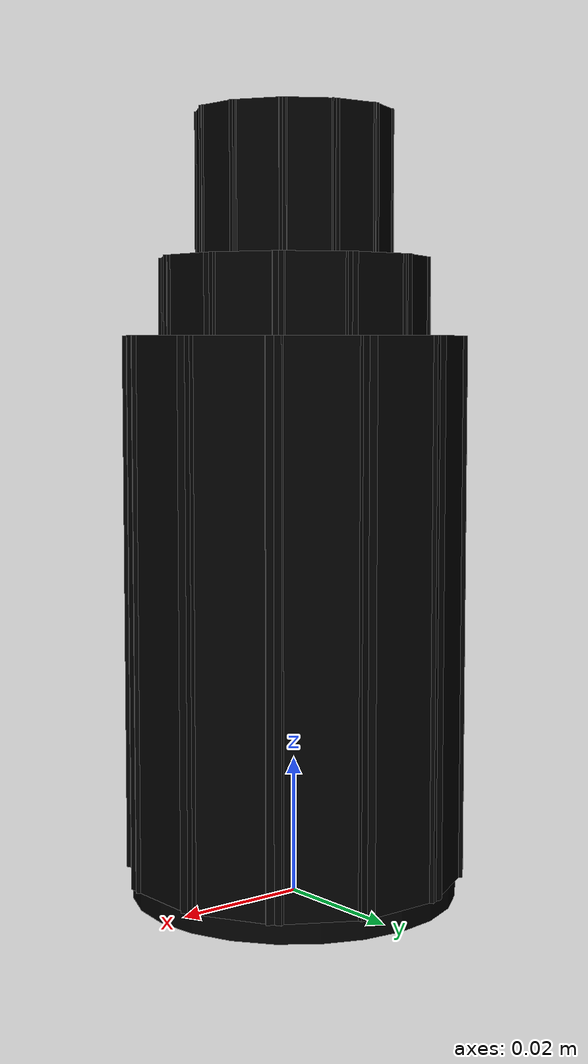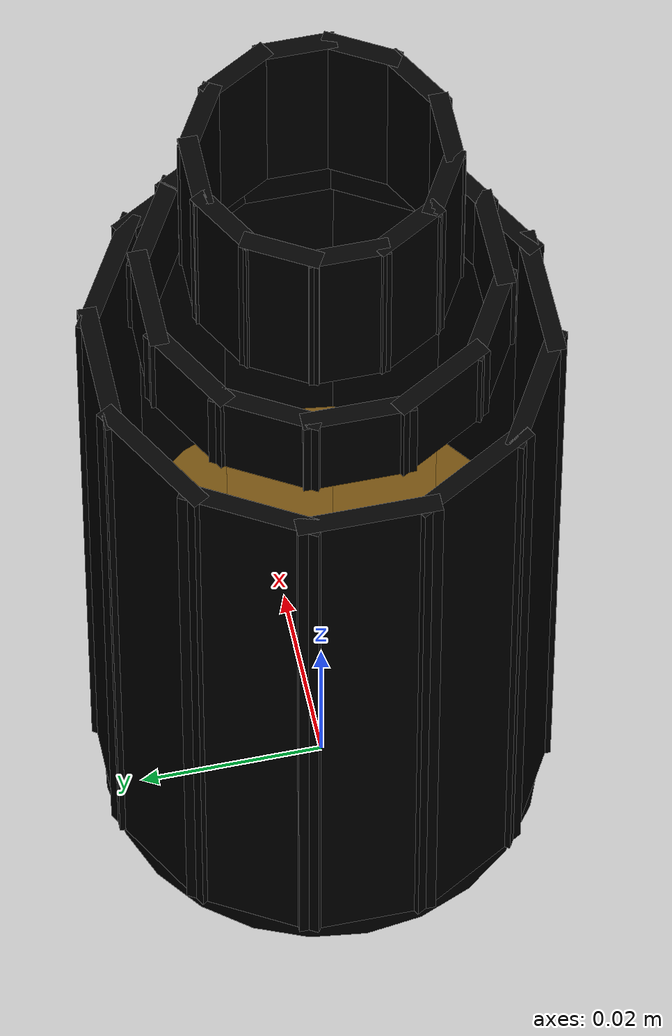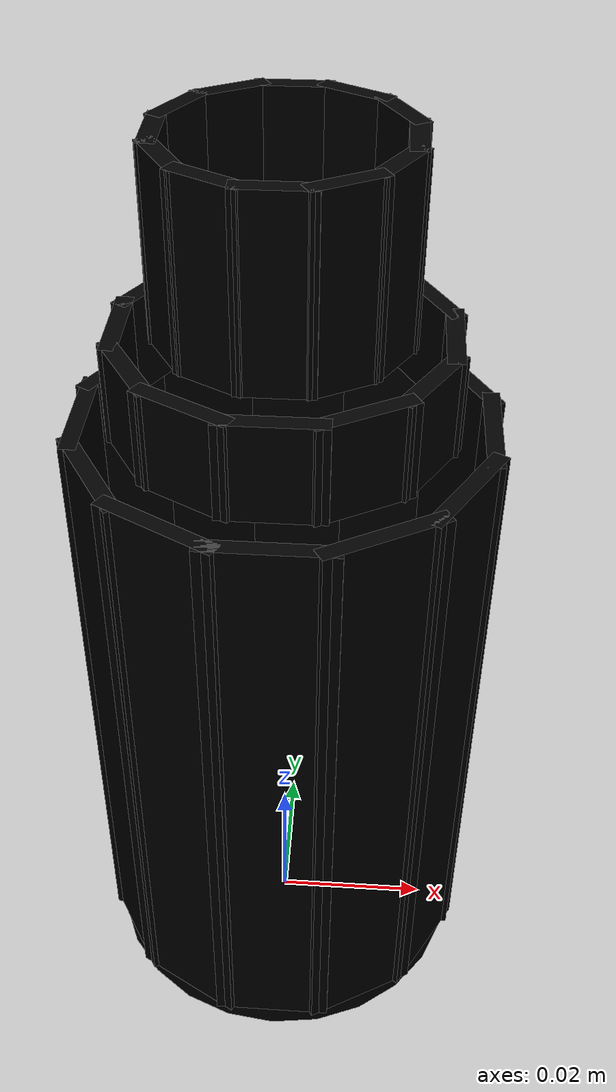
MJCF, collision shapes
<!-- Generated by tools/build_labelled_bottles.py. Citronellyl acetate (liquid),
     100 ml, marker 164, barcode 2008595956908.
     Origin bottom-centre, +Z up, the label's front facing -Y. -->
<mujoco model="SMP-0165_open">
  <!-- Generated by scripts/generate_open_vessels.py; do not edit by hand. -->
  <asset>
    <mesh name="flask_100ml_glass" file="../labelled_bottles/meshes/flask_100ml_glass.obj" inertia="exact"/>
    <mesh name="flask_100ml_cap" file="../labelled_bottles/meshes/flask_100ml_cap.obj" inertia="exact"/>
    <mesh name="flask_100ml_label" file="../labelled_bottles/meshes/flask_100ml_label.obj" inertia="shell"/>
    <mesh name="flask_100ml_label_back" file="../labelled_bottles/meshes/flask_100ml_label_back.obj" inertia="shell"/>
    <texture name="label" type="2d" file="../labelled_bottles/textures/SMP-0165.png"/>
    <material name="label" texture="label" specular="0.05" shininess="0.1"/>
  </asset>
  <worldbody>
    <body name="SMP-0165">
      <inertial pos="-0.00001 -0.00000 0.04859" mass="0.09093"
                diaginertia="1.235e-04 1.235e-04 3.808e-05"/>
      <geom name="glass" type="mesh" mesh="flask_100ml_glass" rgba="0.620 0.280 0.050 0.500" contype="0" conaffinity="0" mass="0"/>
      <geom name="label" type="mesh" mesh="flask_100ml_label" material="label" contype="0" conaffinity="0" mass="0"/>
      <geom name="label_back" type="mesh" mesh="flask_100ml_label_back" rgba="0.950 0.950 0.930 1" contype="0" conaffinity="0" mass="0"/>
      <geom name="body_00" type="box" pos="0.02291 0.00000 0.04262"
            size="0.00100 0.00750 0.03962" euler="0 0 0.000"
            rgba="0 0 0 0" mass="0" group="3"/>
      <geom name="body_01" type="box" pos="0.01984 0.01146 0.04262"
            size="0.00100 0.00750 0.03962" euler="0 0 30.000"
            rgba="0 0 0 0" mass="0" group="3"/>
      <geom name="body_02" type="box" pos="0.01146 0.01984 0.04262"
            size="0.00100 0.00750 0.03962" euler="0 0 60.000"
            rgba="0 0 0 0" mass="0" group="3"/>
      <geom name="body_03" type="box" pos="0.00000 0.02291 0.04262"
            size="0.00100 0.00750 0.03962" euler="0 0 90.000"
            rgba="0 0 0 0" mass="0" group="3"/>
      <geom name="body_04" type="box" pos="-0.01146 0.01984 0.04262"
            size="0.00100 0.00750 0.03962" euler="0 0 120.000"
            rgba="0 0 0 0" mass="0" group="3"/>
      <geom name="body_05" type="box" pos="-0.01984 0.01146 0.04262"
            size="0.00100 0.00750 0.03962" euler="0 0 150.000"
            rgba="0 0 0 0" mass="0" group="3"/>
      <geom name="body_06" type="box" pos="-0.02291 0.00000 0.04262"
            size="0.00100 0.00750 0.03962" euler="0 0 180.000"
            rgba="0 0 0 0" mass="0" group="3"/>
      <geom name="body_07" type="box" pos="-0.01984 -0.01146 0.04262"
            size="0.00100 0.00750 0.03962" euler="0 0 210.000"
            rgba="0 0 0 0" mass="0" group="3"/>
      <geom name="body_08" type="box" pos="-0.01146 -0.01984 0.04262"
            size="0.00100 0.00750 0.03962" euler="0 0 240.000"
            rgba="0 0 0 0" mass="0" group="3"/>
      <geom name="body_09" type="box" pos="-0.00000 -0.02291 0.04262"
            size="0.00100 0.00750 0.03962" euler="0 0 270.000"
            rgba="0 0 0 0" mass="0" group="3"/>
      <geom name="body_10" type="box" pos="0.01146 -0.01984 0.04262"
            size="0.00100 0.00750 0.03962" euler="0 0 300.000"
            rgba="0 0 0 0" mass="0" group="3"/>
      <geom name="body_11" type="box" pos="0.01984 -0.01146 0.04262"
            size="0.00100 0.00750 0.03962" euler="0 0 330.000"
            rgba="0 0 0 0" mass="0" group="3"/>
      <geom name="shoulder_00" type="box" pos="0.01781 0.00000 0.08784"
            size="0.00100 0.00583 0.00560" euler="0 0 0.000"
            rgba="0 0 0 0" mass="0" group="3"/>
      <geom name="shoulder_01" type="box" pos="0.01542 0.00890 0.08784"
            size="0.00100 0.00583 0.00560" euler="0 0 30.000"
            rgba="0 0 0 0" mass="0" group="3"/>
      <geom name="shoulder_02" type="box" pos="0.00890 0.01542 0.08784"
            size="0.00100 0.00583 0.00560" euler="0 0 60.000"
            rgba="0 0 0 0" mass="0" group="3"/>
      <geom name="shoulder_03" type="box" pos="0.00000 0.01781 0.08784"
            size="0.00100 0.00583 0.00560" euler="0 0 90.000"
            rgba="0 0 0 0" mass="0" group="3"/>
      <geom name="shoulder_04" type="box" pos="-0.00890 0.01542 0.08784"
            size="0.00100 0.00583 0.00560" euler="0 0 120.000"
            rgba="0 0 0 0" mass="0" group="3"/>
      <geom name="shoulder_05" type="box" pos="-0.01542 0.00890 0.08784"
            size="0.00100 0.00583 0.00560" euler="0 0 150.000"
            rgba="0 0 0 0" mass="0" group="3"/>
      <geom name="shoulder_06" type="box" pos="-0.01781 0.00000 0.08784"
            size="0.00100 0.00583 0.00560" euler="0 0 180.000"
            rgba="0 0 0 0" mass="0" group="3"/>
      <geom name="shoulder_07" type="box" pos="-0.01542 -0.00890 0.08784"
            size="0.00100 0.00583 0.00560" euler="0 0 210.000"
            rgba="0 0 0 0" mass="0" group="3"/>
      <geom name="shoulder_08" type="box" pos="-0.00890 -0.01542 0.08784"
            size="0.00100 0.00583 0.00560" euler="0 0 240.000"
            rgba="0 0 0 0" mass="0" group="3"/>
      <geom name="shoulder_09" type="box" pos="-0.00000 -0.01781 0.08784"
            size="0.00100 0.00583 0.00560" euler="0 0 270.000"
            rgba="0 0 0 0" mass="0" group="3"/>
      <geom name="shoulder_10" type="box" pos="0.00890 -0.01542 0.08784"
            size="0.00100 0.00583 0.00560" euler="0 0 300.000"
            rgba="0 0 0 0" mass="0" group="3"/>
      <geom name="shoulder_11" type="box" pos="0.01542 -0.00890 0.08784"
            size="0.00100 0.00583 0.00560" euler="0 0 330.000"
            rgba="0 0 0 0" mass="0" group="3"/>
      <geom name="neck_00" type="box" pos="0.01270 0.00000 0.10384"
            size="0.00100 0.00416 0.01039" euler="0 0 0.000"
            rgba="0 0 0 0" mass="0" group="3"/>
      <geom name="neck_01" type="box" pos="0.01100 0.00635 0.10384"
            size="0.00100 0.00416 0.01039" euler="0 0 30.000"
            rgba="0 0 0 0" mass="0" group="3"/>
      <geom name="neck_02" type="box" pos="0.00635 0.01100 0.10384"
            size="0.00100 0.00416 0.01039" euler="0 0 60.000"
            rgba="0 0 0 0" mass="0" group="3"/>
      <geom name="neck_03" type="box" pos="0.00000 0.01270 0.10384"
            size="0.00100 0.00416 0.01039" euler="0 0 90.000"
            rgba="0 0 0 0" mass="0" group="3"/>
      <geom name="neck_04" type="box" pos="-0.00635 0.01100 0.10384"
            size="0.00100 0.00416 0.01039" euler="0 0 120.000"
            rgba="0 0 0 0" mass="0" group="3"/>
      <geom name="neck_05" type="box" pos="-0.01100 0.00635 0.10384"
            size="0.00100 0.00416 0.01039" euler="0 0 150.000"
            rgba="0 0 0 0" mass="0" group="3"/>
      <geom name="neck_06" type="box" pos="-0.01270 0.00000 0.10384"
            size="0.00100 0.00416 0.01039" euler="0 0 180.000"
            rgba="0 0 0 0" mass="0" group="3"/>
      <geom name="neck_07" type="box" pos="-0.01100 -0.00635 0.10384"
            size="0.00100 0.00416 0.01039" euler="0 0 210.000"
            rgba="0 0 0 0" mass="0" group="3"/>
      <geom name="neck_08" type="box" pos="-0.00635 -0.01100 0.10384"
            size="0.00100 0.00416 0.01039" euler="0 0 240.000"
            rgba="0 0 0 0" mass="0" group="3"/>
      <geom name="neck_09" type="box" pos="-0.00000 -0.01270 0.10384"
            size="0.00100 0.00416 0.01039" euler="0 0 270.000"
            rgba="0 0 0 0" mass="0" group="3"/>
      <geom name="neck_10" type="box" pos="0.00635 -0.01100 0.10384"
            size="0.00100 0.00416 0.01039" euler="0 0 300.000"
            rgba="0 0 0 0" mass="0" group="3"/>
      <geom name="neck_11" type="box" pos="0.01100 -0.00635 0.10384"
            size="0.00100 0.00416 0.01039" euler="0 0 330.000"
            rgba="0 0 0 0" mass="0" group="3"/>
      <geom name="base" type="cylinder" pos="0 0 0.00150"
            size="0.02391 0.00150"
            rgba="0 0 0 0" mass="0" group="3"/>
      <geom name="liquid" type="cylinder" pos="0 0 0.01885"
            size="0.02191 0.01585" rgba="0.86 0.62 0.18 0.55"
            contype="0" conaffinity="0" mass="0"/>
      <site name="mouth" pos="0 0 0.11423" size="0.01058 0.001" type="cylinder"
            rgba="0.2 0.7 0.9 0.25" group="4"/>
    </body>
  </worldbody>
</mujoco>
